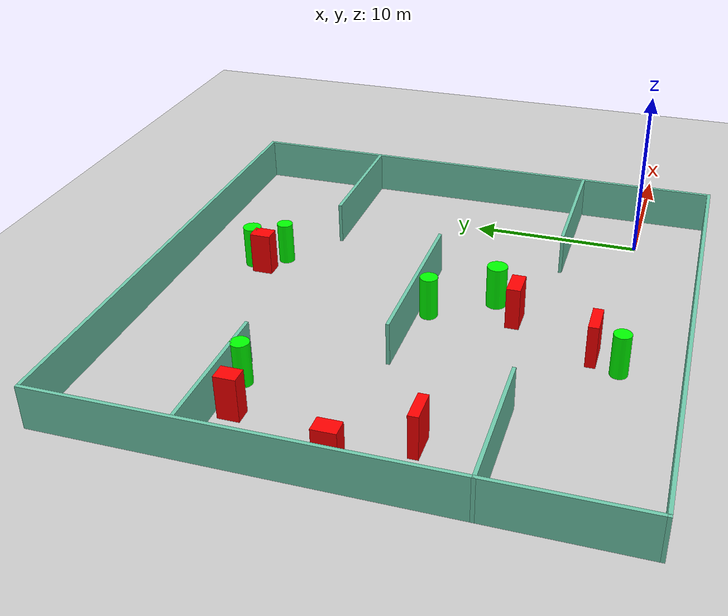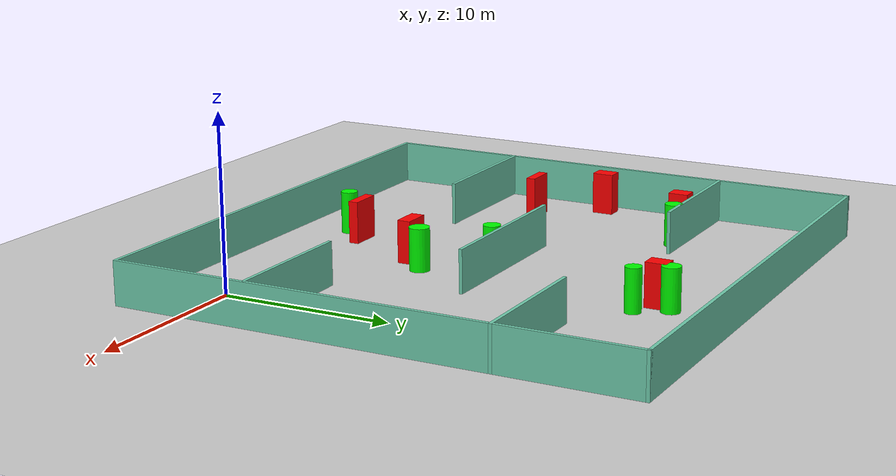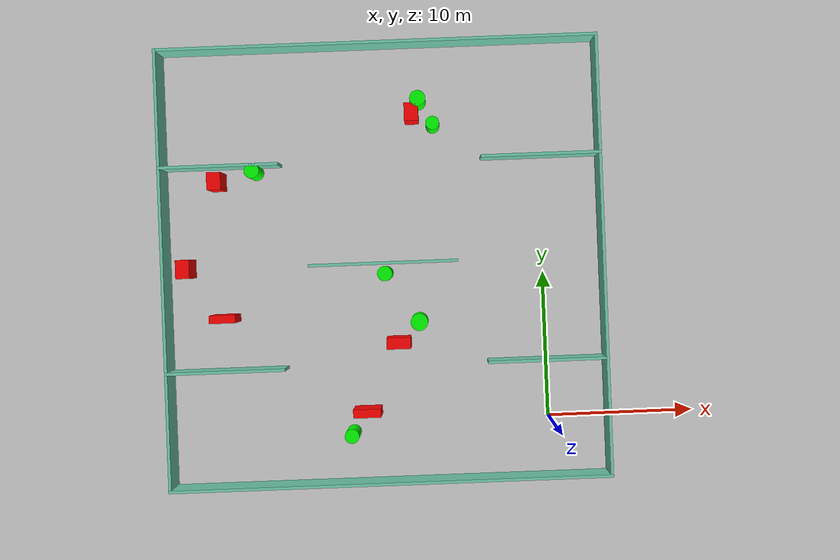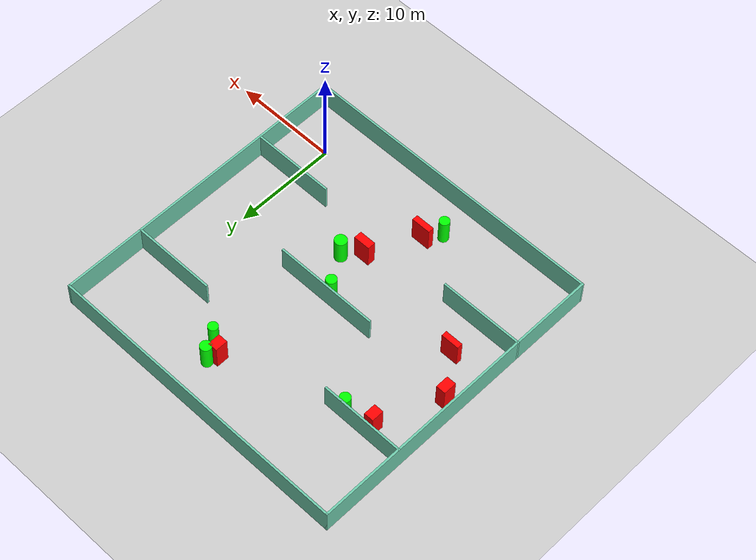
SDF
<sdf version="1.7">
 <world name="default">
  <light name="sun" type="directional">
   <pose>0 0 10 0 -0 0</pose>
   <diffuse>0.8 0.8 0.8 1</diffuse>
   <specular>0.2 0.2 0.2 1</specular>
   <attenuation>
    <range>1000</range>
    <constant>0.9</constant>
    <linear>0.01</linear>
    <quadratic>0.001</quadratic>
   </attenuation>
   <direction>-0.5 0.1 -0.9</direction>
   <spot><inner_angle>0</inner_angle><outer_angle>0</outer_angle><falloff>0</falloff></spot>
  </light>
  <model name="ground_plane">
   <static>1</static>
   <link name="link">
    <collision name="collision">
     <geometry><plane><normal>0 0 1</normal><size>100 100</size></plane></geometry>
     <surface>
      <contact><collide_bitmask>65535</collide_bitmask></contact>
      <friction><ode><mu>100</mu><mu2>50</mu2></ode></friction>
     </surface>
    </collision>
    <visual name="visual">
     <cast_shadows>0</cast_shadows>
     <geometry><plane><normal>0 0 1</normal><size>100 100</size></plane></geometry>
     <material>
      <script><uri>file://media/materials/scripts/gazebo.material</uri><name>Gazebo/Grey</name></script>
     </material>
    </visual>
   </link>
  </model>
  <gravity>0 0 -9.8</gravity>
  <magnetic_field>6e-06 2.3e-05 -4.2e-05</magnetic_field>
  <atmosphere type="adiabatic"/>
  <physics type="ode">
   <max_step_size>0.001</max_step_size>
   <real_time_factor>1</real_time_factor>
   <real_time_update_rate>1000</real_time_update_rate>
  </physics>
  <scene><ambient>0.4 0.4 0.4 1</ambient><background>0.7 0.7 0.7 1</background><shadows>1</shadows></scene>
  <spherical_coordinates>
   <surface_model>EARTH_WGS84</surface_model>
   <latitude_deg>0</latitude_deg>
   <longitude_deg>0</longitude_deg>
   <elevation>0</elevation>
   <heading_deg>0</heading_deg>
  </spherical_coordinates>
  <model name="my_base_walls">
   <link name="Wall_10">
    <collision name="Wall_10_Collision">
     <geometry><box><size>8.2 0.2 2.5</size></box></geometry>
     <pose>0 0 1.25 0 -0 0</pose>
    </collision>
    <visual name="Wall_10_Visual">
     <pose>0 0 1.25 0 -0 0</pose>
     <geometry><box><size>8.2 0.2 2.5</size></box></geometry>
     <material>
      <script><uri>file://media/materials/scripts/gazebo.material</uri><name>Gazebo/Grey</name></script>
      <ambient>0.435294 0.796078 0.67451 1</ambient>
     </material>
     <meta><layer>0</layer></meta>
    </visual>
    <pose>-11 -7 0 0 -0 0</pose>
   </link>
   <link name="Wall_12">
    <collision name="Wall_12_Collision">
     <geometry><box><size>8.2 0.2 2.5</size></box></geometry>
     <pose>0 0 1.25 0 -0 0</pose>
    </collision>
    <visual name="Wall_12_Visual">
     <pose>0 0 1.25 0 -0 0</pose>
     <geometry><box><size>8.2 0.2 2.5</size></box></geometry>
     <material>
      <script><uri>file://media/materials/scripts/gazebo.material</uri><name>Gazebo/Grey</name></script>
      <ambient>0.435294 0.796078 0.67451 1</ambient>
     </material>
     <meta><layer>0</layer></meta>
    </visual>
    <pose>-11 7 0 0 -0 0</pose>
   </link>
   <link name="Wall_14">
    <collision name="Wall_14_Collision">
     <geometry><box><size>8.2 0.2 2.5</size></box></geometry>
     <pose>0 0 1.25 0 -0 0</pose>
    </collision>
    <visual name="Wall_14_Visual">
     <pose>0 0 1.25 0 -0 0</pose>
     <geometry><box><size>8.2 0.2 2.5</size></box></geometry>
     <material>
      <script><uri>file://media/materials/scripts/gazebo.material</uri><name>Gazebo/Grey</name></script>
      <ambient>0.435294 0.796078 0.67451 1</ambient>
     </material>
     <meta><layer>0</layer></meta>
    </visual>
    <pose>11 7 0 0 -0 3.14159</pose>
   </link>
   <link name="Wall_16">
    <collision name="Wall_16_Collision">
     <geometry><box><size>10.2 0.2 2.5</size></box></geometry>
     <pose>0 0 1.25 0 -0 0</pose>
    </collision>
    <visual name="Wall_16_Visual">
     <pose>0 0 1.25 0 -0 0</pose>
     <geometry><box><size>10.2 0.2 2.5</size></box></geometry>
     <material>
      <script><uri>file://media/materials/scripts/gazebo.material</uri><name>Gazebo/Grey</name></script>
      <ambient>0.435294 0.796078 0.67451 1</ambient>
     </material>
     <meta><layer>0</layer></meta>
    </visual>
    <pose>0 0 0 0 -0 3.14159</pose>
   </link>
   <link name="Wall_2">
    <collision name="Wall_2_Collision">
     <geometry><box><size>30.2 0.2 2.5</size></box></geometry>
     <pose>0 0 1.25 0 -0 0</pose>
    </collision>
    <visual name="Wall_2_Visual">
     <pose>0 0 1.25 0 -0 0</pose>
     <geometry><box><size>30.2 0.2 2.5</size></box></geometry>
     <material>
      <script><uri>file://media/materials/scripts/gazebo.material</uri><name>Gazebo/Grey</name></script>
      <ambient>0.435294 0.796078 0.67451 1</ambient>
     </material>
     <meta><layer>0</layer></meta>
    </visual>
    <pose>0 -15 0 0 -0 3.14159</pose>
   </link>
   <link name="Wall_3">
    <collision name="Wall_3_Collision">
     <geometry><box><size>30.2 0.2 2.5</size></box></geometry>
     <pose>0 0 1.25 0 -0 0</pose>
    </collision>
    <visual name="Wall_3_Visual">
     <pose>0 0 1.25 0 -0 0</pose>
     <geometry><box><size>30.2 0.2 2.5</size></box></geometry>
     <material>
      <script><uri>file://media/materials/scripts/gazebo.material</uri><name>Gazebo/Grey</name></script>
      <ambient>0.435294 0.796078 0.67451 1</ambient>
     </material>
     <meta><layer>0</layer></meta>
    </visual>
    <pose>-15 0 0 0 -0 1.5708</pose>
   </link>
   <link name="Wall_4">
    <collision name="Wall_4_Collision">
     <geometry><box><size>30.2 0.2 2.5</size></box></geometry>
     <pose>0 0 1.25 0 -0 0</pose>
    </collision>
    <visual name="Wall_4_Visual">
     <pose>0 0 1.25 0 -0 0</pose>
     <geometry><box><size>30.2 0.2 2.5</size></box></geometry>
     <material>
      <script><uri>file://media/materials/scripts/gazebo.material</uri><name>Gazebo/Grey</name></script>
      <ambient>0.435294 0.796078 0.67451 1</ambient>
     </material>
     <meta><layer>0</layer></meta>
    </visual>
    <pose>0 15 0 0 -0 0</pose>
   </link>
   <link name="Wall_6">
    <collision name="Wall_6_Collision">
     <geometry><box><size>30.2 0.2 2.5</size></box></geometry>
     <pose>0 0 1.25 0 -0 0</pose>
    </collision>
    <visual name="Wall_6_Visual">
     <pose>0 0 1.25 0 -0 0</pose>
     <geometry><box><size>30.2 0.2 2.5</size></box></geometry>
     <material>
      <script><uri>file://media/materials/scripts/gazebo.material</uri><name>Gazebo/Grey</name></script>
      <ambient>0.435294 0.796078 0.67451 1</ambient>
     </material>
     <meta><layer>0</layer></meta>
    </visual>
    <pose>15 0 0 0 -0 1.5708</pose>
   </link>
   <link name="Wall_8">
    <collision name="Wall_8_Collision">
     <geometry><box><size>8.2 0.2 2.5</size></box></geometry>
     <pose>0 0 1.25 0 -0 0</pose>
    </collision>
    <visual name="Wall_8_Visual">
     <pose>0 0 1.25 0 -0 0</pose>
     <geometry><box><size>8.2 0.2 2.5</size></box></geometry>
     <material>
      <script><uri>file://media/materials/scripts/gazebo.material</uri><name>Gazebo/Grey</name></script>
      <ambient>0.435294 0.796078 0.67451 1</ambient>
     </material>
     <meta><layer>0</layer></meta>
    </visual>
    <pose>11 -7 0 0 -0 3.14159</pose>
   </link>
   <static>1</static>
   <pose>-11 11 0 0 -0 0</pose>
  </model>
  <model name="cylinder1">
   <static>1</static>
   <link name="link">
    <inertial>
     <mass>1</mass>
     <inertia><ixx>0.5</ixx><ixy>0</ixy><ixz>0</ixz><iyy>0.5</iyy><iyz>0</iyz><izz>1</izz></inertia>
    </inertial>
    <collision name="collision">
     <geometry><cylinder><radius>0.5100276334445523</radius><length>2.5</length></cylinder></geometry>
    </collision>
    <visual name="visual">
     <geometry><cylinder><radius>0.5100276334445523</radius><length>2.5</length></cylinder></geometry>
     <material>
      <ambient>0 1 0 1</ambient>
      <diffuse>0 1 0 1</diffuse>
      <specular>0.1 0.1 0.1 1</specular>
      <emissive>0 0 0 0</emissive>
     </material>
    </visual>
   </link>
   <pose>-10.908945843896792 10.274179236877046 1.25 0 0 0</pose>
  </model>
  <model name="cylinder2">
   <static>1</static>
   <link name="link">
    <inertial>
     <mass>1</mass>
     <inertia><ixx>0.5</ixx><ixy>0</ixy><ixz>0</ixz><iyy>0.5</iyy><iyz>0</iyz><izz>1</izz></inertia>
    </inertial>
    <collision name="collision">
     <geometry><cylinder><radius>0.49049725509704195</radius><length>2.5</length></cylinder></geometry>
    </collision>
    <visual name="visual">
     <geometry><cylinder><radius>0.49049725509704195</radius><length>2.5</length></cylinder></geometry>
     <material>
      <ambient>0 1 0 1</ambient>
      <diffuse>0 1 0 1</diffuse>
      <specular>0.1 0.1 0.1 1</specular>
      <emissive>0 0 0 0</emissive>
     </material>
    </visual>
   </link>
   <pose>-13.52614880436283 -0.6702897158148144 1.25 0 0 0</pose>
  </model>
  <model name="cylinder3">
   <static>1</static>
   <link name="link">
    <inertial>
     <mass>1</mass>
     <inertia><ixx>0.5</ixx><ixy>0</ixy><ixz>0</ixz><iyy>0.5</iyy><iyz>0</iyz><izz>1</izz></inertia>
    </inertial>
    <collision name="collision">
     <geometry><cylinder><radius>0.5863175468498509</radius><length>2.5</length></cylinder></geometry>
    </collision>
    <visual name="visual">
     <geometry><cylinder><radius>0.5863175468498509</radius><length>2.5</length></cylinder></geometry>
     <material>
      <ambient>0 1 0 1</ambient>
      <diffuse>0 1 0 1</diffuse>
      <specular>0.1 0.1 0.1 1</specular>
      <emissive>0 0 0 0</emissive>
     </material>
    </visual>
   </link>
   <pose>-8.682661834129682 6.899048460545352 1.25 0 0 0</pose>
  </model>
  <model name="cylinder4">
   <static>1</static>
   <link name="link">
    <inertial>
     <mass>1</mass>
     <inertia><ixx>0.5</ixx><ixy>0</ixy><ixz>0</ixz><iyy>0.5</iyy><iyz>0</iyz><izz>1</izz></inertia>
    </inertial>
    <collision name="collision">
     <geometry><cylinder><radius>0.4646290134600154</radius><length>2.5</length></cylinder></geometry>
    </collision>
    <visual name="visual">
     <geometry><cylinder><radius>0.4646290134600154</radius><length>2.5</length></cylinder></geometry>
     <material>
      <ambient>0 1 0 1</ambient>
      <diffuse>0 1 0 1</diffuse>
      <specular>0.1 0.1 0.1 1</specular>
      <emissive>0 0 0 0</emissive>
     </material>
    </visual>
   </link>
   <pose>-7.307808089114099 20.362346889847743 1.25 0 0 0</pose>
  </model>
  <model name="cylinder5">
   <static>1</static>
   <link name="link">
    <inertial>
     <mass>1</mass>
     <inertia><ixx>0.5</ixx><ixy>0</ixy><ixz>0</ixz><iyy>0.5</iyy><iyz>0</iyz><izz>1</izz></inertia>
    </inertial>
    <collision name="collision">
     <geometry><cylinder><radius>0.5375973769321831</radius><length>2.5</length></cylinder></geometry>
    </collision>
    <visual name="visual">
     <geometry><cylinder><radius>0.5375973769321831</radius><length>2.5</length></cylinder></geometry>
     <material>
      <ambient>0 1 0 1</ambient>
      <diffuse>0 1 0 1</diffuse>
      <specular>0.1 0.1 0.1 1</specular>
      <emissive>0 0 0 0</emissive>
     </material>
    </visual>
   </link>
   <pose>-8.264374149685256 22.076375560883363 1.25 0 0 0</pose>
  </model>
  <model name="cylinder6">
   <static>1</static>
   <link name="link">
    <inertial>
     <mass>1</mass>
     <inertia><ixx>0.5</ixx><ixy>0</ixy><ixz>0</ixz><iyy>0.5</iyy><iyz>0</iyz><izz>1</izz></inertia>
    </inertial>
    <collision name="collision">
     <geometry><cylinder><radius>0.5123617452176058</radius><length>2.5</length></cylinder></geometry>
    </collision>
    <visual name="visual">
     <geometry><cylinder><radius>0.5123617452176058</radius><length>2.5</length></cylinder></geometry>
     <material>
      <ambient>0 1 0 1</ambient>
      <diffuse>0 1 0 1</diffuse>
      <specular>0.1 0.1 0.1 1</specular>
      <emissive>0 0 0 0</emissive>
     </material>
    </visual>
   </link>
   <pose>-19.6863765023817 17.575562277012967 1.25 0 0 0</pose>
  </model>
  <model name="box1">
   <static>1</static>
   <link name="link">
    <inertial>
     <mass>1</mass>
     <inertia><ixx>0.083</ixx><ixy>0</ixy><ixz>0</ixz><iyy>0.083</iyy><iyz>0</iyz><izz>0.083</izz></inertia>
    </inertial>
    <collision name="collision">
     <geometry><box><size>0.9329416984525831 1.2807999428821049 2.5</size></box></geometry>
    </collision>
    <visual name="visual">
     <geometry><box><size>0.9329416984525831 1.2807999428821049 2.5</size></box></geometry>
     <material>
      <ambient>1 0 0 1</ambient>
      <diffuse>1 0 0 1</diffuse>
      <specular>0.1 0.1 0.1 1</specular>
      <emissive>0 0 0 0</emissive>
     </material>
    </visual>
    <sensor name="my_contact" type="contact">
     <contact><collision>box_collision</collision><topic>__default_topic__</topic></contact>
    </sensor>
   </link>
   <pose>-24.620127592180253 11.067790665359373 1.25 0 0 0</pose>
  </model>
  <model name="box2">
   <static>1</static>
   <link name="link">
    <inertial>
     <mass>1</mass>
     <inertia><ixx>0.083</ixx><ixy>0</ixy><ixz>0</ixz><iyy>0.083</iyy><iyz>0</iyz><izz>0.083</izz></inertia>
    </inertial>
    <collision name="collision">
     <geometry><box><size>1.8909065289352975 0.5783556103797984 2.5</size></box></geometry>
    </collision>
    <visual name="visual">
     <geometry><box><size>1.8909065289352975 0.5783556103797984 2.5</size></box></geometry>
     <material>
      <ambient>1 0 0 1</ambient>
      <diffuse>1 0 0 1</diffuse>
      <specular>0.1 0.1 0.1 1</specular>
      <emissive>0 0 0 0</emissive>
     </material>
    </visual>
    <sensor name="my_contact" type="contact">
     <contact><collision>box_collision</collision><topic>__default_topic__</topic></contact>
    </sensor>
   </link>
   <pose>-12.45013405045651 0.8359736576571644 1.25 0 0 0</pose>
  </model>
  <model name="box3">
   <static>1</static>
   <link name="link">
    <inertial>
     <mass>1</mass>
     <inertia><ixx>0.083</ixx><ixy>0</ixy><ixz>0</ixz><iyy>0.083</iyy><iyz>0</iyz><izz>0.083</izz></inertia>
    </inertial>
    <collision name="collision">
     <geometry><box><size>1.6330289537013327 0.7858615554716459 2.5</size></box></geometry>
    </collision>
    <visual name="visual">
     <geometry><box><size>1.6330289537013327 0.7858615554716459 2.5</size></box></geometry>
     <material>
      <ambient>1 0 0 1</ambient>
      <diffuse>1 0 0 1</diffuse>
      <specular>0.1 0.1 0.1 1</specular>
      <emissive>0 0 0 0</emissive>
     </material>
    </visual>
    <sensor name="my_contact" type="contact">
     <contact><collision>box_collision</collision><topic>__default_topic__</topic></contact>
    </sensor>
   </link>
   <pose>-10.132920905278933 5.514356546467791 1.25 0 0 0</pose>
  </model>
  <model name="box4">
   <static>1</static>
   <link name="link">
    <inertial>
     <mass>1</mass>
     <inertia><ixx>0.083</ixx><ixy>0</ixy><ixz>0</ixz><iyy>0.083</iyy><iyz>0</iyz><izz>0.083</izz></inertia>
    </inertial>
    <collision name="collision">
     <geometry><box><size>1.7697671178184855 0.5518526960949782 2.5</size></box></geometry>
    </collision>
    <visual name="visual">
     <geometry><box><size>1.7697671178184855 0.5518526960949782 2.5</size></box></geometry>
     <material>
      <ambient>1 0 0 1</ambient>
      <diffuse>1 0 0 1</diffuse>
      <specular>0.1 0.1 0.1 1</specular>
      <emissive>0 0 0 0</emissive>
     </material>
    </visual>
    <sensor name="my_contact" type="contact">
     <contact><collision>box_collision</collision><topic>__default_topic__</topic></contact>
    </sensor>
   </link>
   <pose>-22.043756287880576 7.5835761448787835 1.25 0 0 0</pose>
  </model>
  <model name="box5">
   <static>1</static>
   <link name="link">
    <inertial>
     <mass>1</mass>
     <inertia><ixx>0.083</ixx><ixy>0</ixy><ixz>0</ixz><iyy>0.083</iyy><iyz>0</iyz><izz>0.083</izz></inertia>
    </inertial>
    <collision name="collision">
     <geometry><box><size>0.9489378935323952 1.2166749982754628 2.5</size></box></geometry>
    </collision>
    <visual name="visual">
     <geometry><box><size>0.9489378935323952 1.2166749982754628 2.5</size></box></geometry>
     <material>
      <ambient>1 0 0 1</ambient>
      <diffuse>1 0 0 1</diffuse>
      <specular>0.1 0.1 0.1 1</specular>
      <emissive>0 0 0 0</emissive>
     </material>
    </visual>
    <sensor name="my_contact" type="contact">
     <contact><collision>box_collision</collision><topic>__default_topic__</topic></contact>
    </sensor>
   </link>
   <pose>-8.729299895185374 21.185156056895263 1.25 0 0 0</pose>
  </model>
  <model name="box6">
   <static>1</static>
   <link name="link">
    <inertial>
     <mass>1</mass>
     <inertia><ixx>0.083</ixx><ixy>0</ixy><ixz>0</ixz><iyy>0.083</iyy><iyz>0</iyz><izz>0.083</izz></inertia>
    </inertial>
    <collision name="collision">
     <geometry><box><size>0.9399989833857221 1.1882565148824475 2.5</size></box></geometry>
    </collision>
    <visual name="visual">
     <geometry><box><size>0.9399989833857221 1.1882565148824475 2.5</size></box></geometry>
     <material>
      <ambient>1 0 0 1</ambient>
      <diffuse>1 0 0 1</diffuse>
      <specular>0.1 0.1 0.1 1</specular>
      <emissive>0 0 0 0</emissive>
     </material>
    </visual>
    <sensor name="my_contact" type="contact">
     <contact><collision>box_collision</collision><topic>__default_topic__</topic></contact>
    </sensor>
   </link>
   <pose>-22.28373893021589 16.978008408184195 1.25 0 0 0</pose>
  </model>
 </world>
</sdf>
